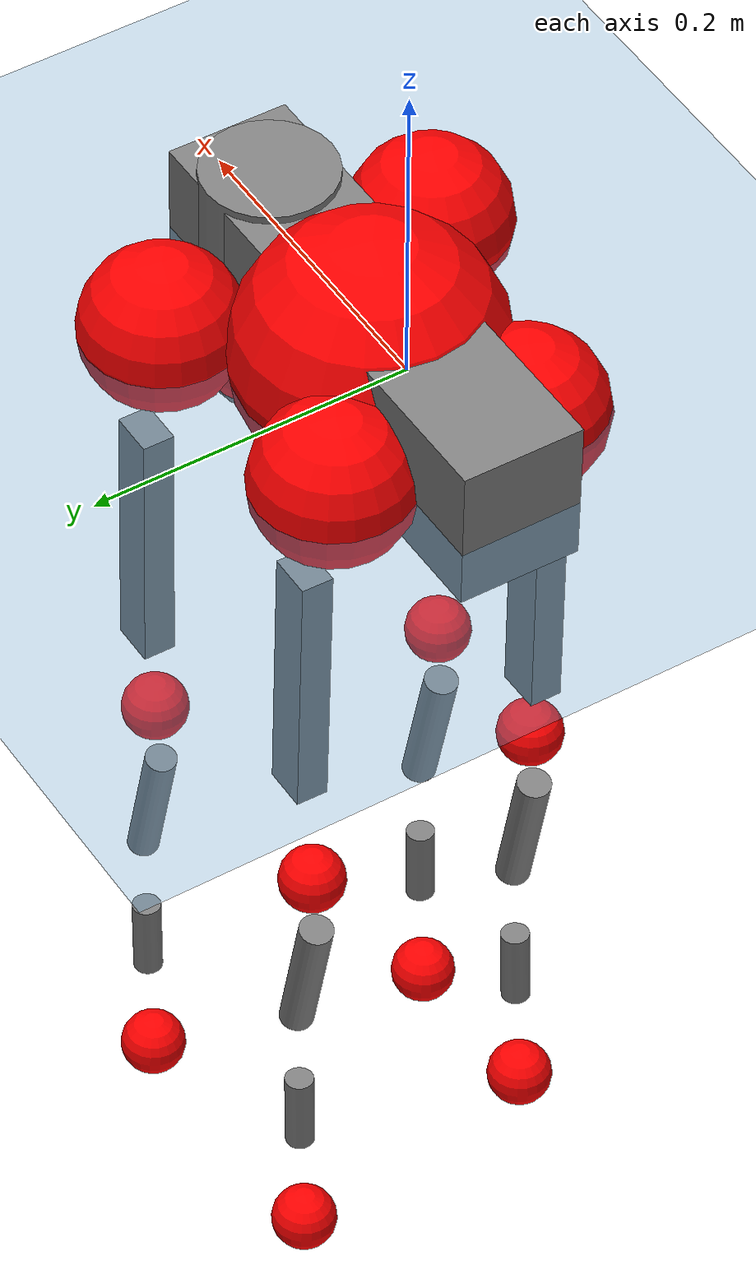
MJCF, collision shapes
<mujoco model="go2">
  <compiler angle="radian" assetdir="assets" balanceinertia="true" inertiafromgeom="false"/>

  <option timestep="0.005" density="1.2" viscosity="2e-05"/>

  <size nkey="1"/>

  <visual>
    <quality shadowsize="8192"/>
    <map shadowclip="0.5"/>
  </visual>

  <default>
    <default class="/">
      <geom contype="0" conaffinity="0" group="1" solref="-1000 -80"/>
      <site size="0.01 0.005 0.005" group="5"/>
      <general forcelimited="true" biastype="affine" gainprm="20" biasprm="0 -20 -0.5"/>
      <default class="go2">
        <joint armature="0.01" damping="0.01" frictionloss="0.2"/>
        <geom condim="1" margin="0.001"/>
        <default class="visual">
          <geom type="mesh" group="2"/>
        </default>
        <default class="collision">
          <geom group="3"/>
          <default class="foot">
            <geom size="0.022 0 0" condim="6" priority="1" friction="0.8 0.02 0.01" solimp="0.015 1 0.022"/>
          </default>
        </default>
        <default class="reward_collision_sphere">
          <geom group="5" rgba="1 0 0 1"/>
        </default>
      </default>
    </default>
  </default>

  <asset>
    <texture type="skybox" colorspace="auto" name="//unnamed_texture_0" builtin="gradient" rgb1="0.95 0.95 0.95" rgb2="0.95 0.95 0.95" width="100" height="600"/>
    <texture type="2d" colorspace="auto" name="texplane" builtin="checker" rgb1="0.345 0.575 0.748" rgb2="0.345 0.575 0.748" markrgb="1 1 1" width="512" height="512"/>
    <material name="MatPlane" class="/" texture="texplane" texuniform="true" texrepeat="2 2" specular="0.9"/>
    <material name="metal" class="/" rgba="0.9 0.95 0.95 1"/>
    <material name="black" class="/" rgba="0 0 0 1"/>
    <material name="white" class="/"/>
    <material name="gray" class="/" rgba="0.671705 0.692426 0.77427 1"/>
    <mesh name="base_0" class="/" file="base_0.obj"/>
    <mesh name="base_1" class="/" file="base_1.obj"/>
    <mesh name="base_2" class="/" file="base_2.obj"/>
    <mesh name="base_3" class="/" file="base_3.obj"/>
    <mesh name="base_4" class="/" file="base_4.obj"/>
    <mesh name="hip_0" class="/" file="hip_0.obj"/>
    <mesh name="hip_1" class="/" file="hip_1.obj"/>
    <mesh name="thigh_0" class="/" file="thigh_0.obj"/>
    <mesh name="thigh_1" class="/" file="thigh_1.obj"/>
    <mesh name="thigh_mirror_0" class="/" file="thigh_mirror_0.obj"/>
    <mesh name="thigh_mirror_1" class="/" file="thigh_mirror_1.obj"/>
    <mesh name="calf_0" class="/" file="calf_0.obj"/>
    <mesh name="calf_1" class="/" file="calf_1.obj"/>
    <mesh name="calf_mirror_0" class="/" file="calf_mirror_0.obj"/>
    <mesh name="calf_mirror_1" class="/" file="calf_mirror_1.obj"/>
    <mesh name="foot" class="/" file="foot.obj"/>
  </asset>

  <worldbody>
    <geom name="floor" class="/" size="100 100 0.125" type="plane" group="0" material="MatPlane"/>
    <light name="toplight_shadow" class="/" pos="0 0 5" dir="0.0990148 0.0990148 -0.990148" type="directional" ambient="0.04 0.04 0.04" diffuse="0.55 0.55 0.55" specular="0.12 0.12 0.12"/>
    <light name="toplight_fill" class="/" pos="0 0 5" dir="0.0990148 0.0990148 -0.990148" type="directional" castshadow="false" ambient="0.04 0.04 0.04" diffuse="0.3 0.3 0.3" specular="0.08 0.08 0.08"/>
    <body name="trunk" childclass="go2" pos="0.0168856 0.0126846 0.00876026" quat="0.999975 0.00684038 0.000427588 0.00194348">
      <inertial pos="0.0255344 0.00394772 -0.00446263" quat="0.0176252 0.70182 -0.0377504 0.711135" mass="3.45611" diaginertia="0.000915119 0.00869855 0.126716"/>
      <joint name="//unnamed_joint_0" type="free" armature="0" damping="0" frictionloss="0"/>
      <geom name="//unnamed_geom_1" class="visual" material="black" mesh="base_0"/>
      <geom name="//unnamed_geom_2" class="visual" material="black" mesh="base_1"/>
      <geom name="//unnamed_geom_3" class="visual" material="black" mesh="base_2"/>
      <geom name="//unnamed_geom_4" class="visual" material="white" mesh="base_3"/>
      <geom name="//unnamed_geom_5" class="visual" material="gray" mesh="base_4"/>
      <geom name="trunk_1" class="collision" size="0.152861 0.0379918 0.0463215" type="box"/>
      <geom name="trunk_2" class="collision" size="0.0406329 0.0365696" pos="0.107456 0 0.0144204" type="cylinder"/>
      <geom name="trunk_3" class="collision" size="0.0381949" pos="0.110472 0 -0.0865224"/>
      <geom name="//unnamed_geom_9" class="reward_collision_sphere" size="0.0812658"/>
      <geom name="//unnamed_geom_10" class="reward_collision_sphere" size="0.0487595" pos="0.105571 0 -0.0648918"/>
      <site name="imu" pos="-0.0235793 -0.041969 0.096805" size="0.00812658"/>
      <camera name="track" pos="0 -1.23779 0" quat="0.707107 0.707107 0 0" mode="trackcom"/>
      <camera name="ego_camera" pos="0.117636 0 0.0648918" quat="-0.5 -0.5 0.5 0.5"/>
      <body name="FL_hip" pos="0.0844458 0.0405843 -0.0088498" quat="0.999964 -0.00237026 -0.00801567 0.00116311">
        <inertial pos="0.0157864 0.011682 0.0104453" quat="0.505009 0.508203 0.498711 0.487836" mass="0.312778" diaginertia="5.82258e-06 5.27156e-05 0.00209853"/>
        <joint name="FL_hip_joint" pos="0 0 0" axis="0.999637 0.0217253 -0.0159023" stiffness="0.0404173" range="-0.974307 1.34873" armature="0.00265192" damping="0.0688599" frictionloss="0.0881146"/>
        <geom name="//unnamed_geom_11" class="visual" material="metal" mesh="hip_0"/>
        <geom name="//unnamed_geom_12" class="visual" material="gray" mesh="hip_1"/>
        <geom name="//unnamed_geom_13" class="collision" size="0.0373823 0.0162532" pos="0 0.0495117 0" quat="0.707107 0.707107 0 0" type="cylinder"/>
        <geom name="//unnamed_geom_14" class="reward_collision_sphere" size="0.0487595" pos="0 0.0433228 0"/>
        <body name="FL_thigh" pos="0.000278515 0.0538133 -0.00853068" quat="0.999999 0.000500254 -0.000195555 -0.00114626">
          <inertial pos="-0.0182464 -0.0180299 -0.0627589" quat="0.82576 0.0771152 -0.0358513 0.557573" mass="0.657143" diaginertia="4.67172e-05 0.000473391 0.00594659"/>
          <joint name="FL_thigh_joint" pos="0 0 0" axis="-0.047966 0.998809 0.0089329" range="-1.28469 3.21844" armature="0.00293812" damping="0.0928124" frictionloss="0.0804339"/>
          <geom name="//unnamed_geom_15" class="visual" material="metal" mesh="thigh_0"/>
          <geom name="//unnamed_geom_16" class="visual" material="gray" mesh="thigh_1"/>
          <geom name="//unnamed_geom_17" class="collision" size="0.0865481 0.00995506 0.0138152" pos="0 0 -0.153577" quat="0.707107 0 0.707107 0" type="box"/>
          <body name="FL_calf" pos="0.00186207 -0.00628457 -0.303408" quat="0.999982 0.00301262 -0.00241868 -0.00461903">
            <inertial pos="-0.00888509 -0.0108304 -0.190583" quat="0.674863 -0.00111317 0.0552713 0.735869" mass="0.117964" diaginertia="1.24984e-05 0.000116098 0.000382651"/>
            <joint name="FL_calf_joint" pos="0 0 0" axis="0.000764491 0.999481 -0.0322156" range="-2.6428 -0.543718" armature="0.0130194" damping="0" frictionloss="0.203459"/>
            <geom name="//unnamed_geom_18" class="visual" material="gray" mesh="calf_0"/>
            <geom name="//unnamed_geom_19" class="visual" material="black" mesh="calf_1"/>
            <geom name="FL_calf0" class="collision" size="0.0097519 0.0487595" pos="0.00301631 0 -0.0865224" quat="0.994493 0 -0.104807 0" type="cylinder"/>
            <geom name="//unnamed_geom_21" class="collision" size="0.00893924 0.0264114" pos="0.00754077 0 -0.213422" quat="0.999688 0 0.0249974 0" type="cylinder"/>
            <geom name="//unnamed_geom_22" class="visual" pos="0 0 -0.307154" quat="1 0 0 0" material="black" mesh="foot"/>
            <geom name="FL_foot" class="foot" size="0.0134068" pos="-0.000754077 0 -0.307154"/>
            <geom name="//unnamed_geom_24" class="reward_collision_sphere" size="0.0203165"/>
            <geom name="//unnamed_geom_25" class="reward_collision_sphere" size="0.0203165" pos="-0.000754077 0 -0.307154"/>
            <site name="FL_foot" class="foot" pos="-0.000754077 0 -0.307154" size="0.00812658"/>
          </body>
        </body>
      </body>
      <body name="FR_hip" pos="0.0752159 -0.0436027 -0.0013033" quat="0.999988 -0.0019362 -0.000323335 0.00444219">
        <inertial pos="-0.0159658 -0.00833036 -0.00143753" quat="0.492588 0.504299 0.512862 0.489911" mass="0.233948" diaginertia="6.05045e-06 4.91838e-05 0.00289312"/>
        <joint name="FR_hip_joint" pos="0 0 0" axis="0.999852 -0.0120717 0.0122448" stiffness="0.0405525" range="-1.26698 0.998993" armature="0.0154063" damping="0.0216521" frictionloss="0.0236786"/>
        <geom name="//unnamed_geom_26" class="visual" pos="0 -7.17088e-09 -3.07574e-07" quat="4.63268e-05 1 0 0" material="metal" mesh="hip_0"/>
        <geom name="//unnamed_geom_27" class="visual" pos="0 -1.16249e-08 7.60748e-07" quat="4.63268e-05 1 0 0" material="gray" mesh="hip_1"/>
        <geom name="//unnamed_geom_28" class="collision" size="0.0373823 0.0162532" pos="0 -0.0495117 0" quat="0.707107 0.707107 0 0" type="cylinder"/>
        <geom name="//unnamed_geom_29" class="reward_collision_sphere" size="0.0487595" pos="0 -0.0433228 0"/>
        <body name="FR_thigh" pos="-0.00340581 -0.0518385 -0.0154747" quat="0.999966 0.00578473 -0.00406247 0.00425882">
          <inertial pos="0.0115683 0.0314107 -0.0398289" quat="0.558019 -0.0258104 0.0611633 0.827168" mass="0.836216" diaginertia="4.8922e-05 0.000654469 0.00712409"/>
          <joint name="FR_thigh_joint" pos="0 0 0" axis="0.0125519 -0.999615 0.0247435" stiffness="0.020665" range="-3.34018 1.74128" armature="0.00846702" damping="0.0108367" frictionloss="0.0875937"/>
          <geom name="//unnamed_geom_30" class="visual" material="metal" mesh="thigh_mirror_0"/>
          <geom name="//unnamed_geom_31" class="visual" material="gray" mesh="thigh_mirror_1"/>
          <geom name="//unnamed_geom_32" class="collision" size="0.0865481 0.00995506 0.0138152" pos="0 0 -0.153577" quat="0.707107 0 0.707107 0" type="box"/>
          <body name="FR_calf" pos="-0.0122417 0.00150389 -0.309971" quat="1 -0.000135235 0.000224838 -4.23289e-05">
            <inertial pos="-0.0080787 0.00118434 -0.196691" quat="0.708007 0.0193066 -0.00440816 0.705928" mass="0.0967584" diaginertia="7.56917e-06 0.000126565 0.000260493"/>
            <joint name="FR_calf_joint" pos="0 0 0" axis="-0.030799 -0.997531 0.0631145" stiffness="0.0562738" range="0.818702 2.81359" armature="0.00668103" damping="0" frictionloss="0.106915"/>
            <geom name="//unnamed_geom_33" class="visual" material="gray" mesh="calf_mirror_0"/>
            <geom name="//unnamed_geom_34" class="visual" material="black" mesh="calf_mirror_1"/>
            <geom name="FR_calf0" class="collision" size="0.0105646 0.0487595" pos="0.00377038 0 -0.0865224" quat="0.995004 0 -0.0998334 0" type="cylinder"/>
            <geom name="//unnamed_geom_36" class="collision" size="0.00893924 0.0264114" pos="0.00754077 0 -0.213422" quat="0.999688 0 0.0249974 0" type="cylinder"/>
            <geom name="//unnamed_geom_37" class="visual" pos="0 0 -0.307154" quat="1 0 0 0" material="black" mesh="foot"/>
            <geom name="FR_foot" class="foot" size="0.0170793" pos="-0.000754077 0 -0.307154"/>
            <geom name="//unnamed_geom_39" class="reward_collision_sphere" size="0.0203165"/>
            <geom name="//unnamed_geom_40" class="reward_collision_sphere" size="0.0203165" pos="-0.000754077 0 -0.307154"/>
            <site name="FR_foot" class="foot" pos="-0.000754077 0 -0.307154" size="0.00812658"/>
          </body>
        </body>
      </body>
      <body name="RL_hip" pos="-0.0673053 0.0230929 -0.0111113" quat="0.999957 0.00314701 -0.00867715 0.00129457">
        <inertial pos="-0.0148887 0.00739603 -0.00442015" quat="0.504799 0.497785 0.497739 0.499645" mass="0.320567" diaginertia="6.46886e-06 4.33301e-05 0.00311623"/>
        <joint name="RL_hip_joint" pos="0 0 0" axis="-0.999497 0.0289221 0.0129892" range="-0.932065 0.949698" armature="0.0073896" damping="0.0027826" frictionloss="0.0921501"/>
        <geom name="//unnamed_geom_41" class="visual" pos="9.27785e-09 0 1.81867e-06" quat="4.63268e-05 0 1 0" material="metal" mesh="hip_0"/>
        <geom name="//unnamed_geom_42" class="visual" pos="1.50405e-08 0 1.6129e-06" quat="4.63268e-05 0 1 0" material="gray" mesh="hip_1"/>
        <geom name="//unnamed_geom_43" class="collision" size="0.0373823 0.0162532" pos="0 0.0495117 0" quat="0.707107 0.707107 0 0" type="cylinder"/>
        <geom name="//unnamed_geom_44" class="reward_collision_sphere" size="0.0487595" pos="0 0.0433228 0"/>
        <body name="RL_thigh" pos="0.0162738 0.0498605 -0.0131174" quat="0.999966 0.00149311 0.00665401 -0.00458033">
          <inertial pos="0.00117789 -0.00802005 -0.0413896" quat="0.800396 0.115536 0.0324114 0.58734" mass="0.728608" diaginertia="4.10155e-05 0.000619641 0.00491253"/>
          <joint name="RL_thigh_joint" pos="0 0 0" axis="-0.00242216 0.99999 0.00372796" range="-0.421941 4.57984" armature="0.0124965" damping="0.0932545" frictionloss="0.229372"/>
          <geom name="//unnamed_geom_45" class="visual" material="metal" mesh="thigh_0"/>
          <geom name="//unnamed_geom_46" class="visual" material="gray" mesh="thigh_1"/>
          <geom name="//unnamed_geom_47" class="collision" size="0.0865481 0.00995506 0.0138152" pos="0 0 -0.153577" quat="0.707107 0 0.707107 0" type="box"/>
          <body name="RL_calf" pos="-0.00780424 -0.00541103 -0.31715" quat="0.999999 -0.000997051 -0.000600451 -0.000227727">
            <inertial pos="0.00229581 0.000804476 -0.215003" quat="0.713694 0.00135034 -0.00507122 0.700438" mass="0.130468" diaginertia="1.13063e-05 0.000125049 0.000338254"/>
            <joint name="RL_calf_joint" pos="0 0 0" axis="0.00682164 0.999972 0.00310164" stiffness="0.0177381" range="-2.58479 -0.848444" armature="0.0126677" damping="0.0805944" frictionloss="0.184462"/>
            <geom name="//unnamed_geom_48" class="visual" material="gray" mesh="calf_0"/>
            <geom name="//unnamed_geom_49" class="visual" material="black" mesh="calf_1"/>
            <geom name="RL_calf0" class="collision" size="0.0105646 0.0487595" pos="0.00377038 0 -0.0865224" quat="0.995004 0 -0.0998334 0" type="cylinder"/>
            <geom name="//unnamed_geom_51" class="collision" size="0.00893924 0.0264114" pos="0.00754077 0 -0.213422" quat="0.999688 0 0.0249974 0" type="cylinder"/>
            <geom name="//unnamed_geom_52" class="visual" pos="0 0 -0.307154" quat="1 0 0 0" material="black" mesh="foot"/>
            <geom name="RL_foot" class="foot" size="0.00943013" pos="-0.000754077 0 -0.307154"/>
            <geom name="//unnamed_geom_54" class="reward_collision_sphere" size="0.0203165"/>
            <geom name="//unnamed_geom_55" class="reward_collision_sphere" size="0.0203165" pos="-0.000754077 0 -0.307154"/>
            <site name="RL_foot" class="foot" pos="-0.000754077 0 -0.307154" size="0.00812658"/>
          </body>
        </body>
      </body>
      <body name="RR_hip" pos="-0.0724666 -0.0123013 -0.0139593" quat="0.999979 -0.00216231 0.00244045 0.00556058">
        <inertial pos="0.00084351 -0.0151843 7.8459e-05" quat="0.516447 0.454626 0.552612 0.470338" mass="0.374427" diaginertia="5.97755e-06 4.75688e-05 0.00342768"/>
        <joint name="RR_hip_joint" pos="0 0 0" axis="-0.9996 0.0137153 -0.024722" range="-1.15806 1.01472" armature="0.000519482" damping="0" frictionloss="0.285711"/>
        <geom name="//unnamed_geom_56" class="visual" pos="-9.26948e-09 -7.17088e-09 2.12625e-06" quat="2.14617e-09 4.63268e-05 4.63268e-05 -1" material="metal" mesh="hip_0"/>
        <geom name="//unnamed_geom_57" class="visual" pos="-1.50612e-08 -1.16249e-08 8.52155e-07" quat="2.14617e-09 4.63268e-05 4.63268e-05 -1" material="gray" mesh="hip_1"/>
        <geom name="//unnamed_geom_58" class="collision" size="0.0373823 0.0162532" pos="0 -0.0495117 0" quat="0.707107 0.707107 0 0" type="cylinder"/>
        <geom name="//unnamed_geom_59" class="reward_collision_sphere" size="0.0487595" pos="0 -0.0433228 0"/>
        <body name="RR_thigh" pos="-0.00239342 -0.0533783 0.0143886" quat="0.999989 -0.00104926 -0.0043666 -0.00159175">
          <inertial pos="-0.00096032 0.0237656 -0.0504081" quat="0.552297 -0.0153796 0.0788409 0.829768" mass="0.768981" diaginertia="5.58571e-05 0.000599176 0.00726374"/>
          <joint name="RR_thigh_joint" pos="0 0 0" axis="0.0137504 -0.999191 -0.0377823" stiffness="0.0621319" range="-4.21993 0.293644" armature="0.00419244" damping="0.0356182" frictionloss="0.219727"/>
          <geom name="//unnamed_geom_60" class="visual" material="metal" mesh="thigh_mirror_0"/>
          <geom name="//unnamed_geom_61" class="visual" material="gray" mesh="thigh_mirror_1"/>
          <geom name="//unnamed_geom_62" class="collision" size="0.0865481 0.00995506 0.0138152" pos="0 0 -0.153577" quat="0.707107 0 0.707107 0" type="box"/>
          <body name="RR_calf" pos="0.0189921 -0.0132545 -0.304662" quat="0.999996 -0.0019482 0.000940719 -0.00190521">
            <inertial pos="-0.0158422 0.000495033 -0.21472" quat="0.733681 -0.0076916 0.00595737 0.679424" mass="0.122454" diaginertia="1.19442e-05 0.000187873 0.000341183"/>
            <joint name="RR_calf_joint" pos="0 0 0" axis="-0.0264255 -0.999583 -0.0116586" range="0.576402 2.35242" armature="0.0144079" damping="0" frictionloss="0.103848"/>
            <geom name="//unnamed_geom_63" class="visual" material="gray" mesh="calf_mirror_0"/>
            <geom name="//unnamed_geom_64" class="visual" material="black" mesh="calf_mirror_1"/>
            <geom name="RR_calf0" class="collision" size="0.0105646 0.0487595" pos="0.00377038 0 -0.0865224" quat="0.995004 0 -0.0998334 0" type="cylinder"/>
            <geom name="//unnamed_geom_66" class="collision" size="0.00893924 0.0264114" pos="0.00754077 0 -0.213422" quat="0.999688 0 0.0249974 0" type="cylinder"/>
            <geom name="//unnamed_geom_67" class="visual" pos="0 0 -0.307154" quat="1 0 0 0" material="black" mesh="foot"/>
            <geom name="RR_foot" class="foot" size="0.0202899" pos="-0.000754077 0 -0.307154"/>
            <geom name="//unnamed_geom_69" class="reward_collision_sphere" size="0.0203165"/>
            <geom name="//unnamed_geom_70" class="reward_collision_sphere" size="0.0203165" pos="-0.000754077 0 -0.307154"/>
            <site name="RR_foot" class="foot" pos="-0.000754077 0 -0.307154" size="0.00812658"/>
          </body>
        </body>
      </body>
    </body>
  </worldbody>

  <contact>
    <pair class="/" geom1="floor" geom2="FL_foot" name="//unnamed_contact_0"/>
    <pair class="/" geom1="floor" geom2="FR_foot" name="//unnamed_contact_1"/>
    <pair class="/" geom1="floor" geom2="RL_foot" name="//unnamed_contact_2"/>
    <pair class="/" geom1="floor" geom2="RR_foot" name="//unnamed_contact_3"/>
  </contact>

  <actuator>
    <general name="FL_hip" class="/" joint="FL_hip_joint" forcerange="-21.8603 21.8603" gainprm="16.5894" biasprm="0 -16.5894 -0.386017"/>
    <general name="FL_thigh" class="/" joint="FL_thigh_joint" forcerange="-26.7977 26.7977" gainprm="16.5894" biasprm="0 -16.5894 -0.386017"/>
    <general name="FL_calf" class="/" joint="FL_calf_joint" forcerange="-37.2084 37.2084" gainprm="16.5894" biasprm="0 -16.5894 -0.386017"/>
    <general name="FR_hip" class="/" joint="FR_hip_joint" forcerange="-6.31752 6.31752" gainprm="16.5894" biasprm="0 -16.5894 -0.386017"/>
    <general name="FR_thigh" class="/" joint="FR_thigh_joint" forcerange="-19.6044 19.6044" gainprm="16.5894" biasprm="0 -16.5894 -0.386017"/>
    <general name="FR_calf" class="/" joint="FR_calf_joint" forcerange="-55.3429 55.3429" gainprm="16.5894" biasprm="0 -16.5894 -0.386017"/>
    <general name="RL_hip" class="/" joint="RL_hip_joint" forcerange="-22.5829 22.5829" gainprm="16.5894" biasprm="0 -16.5894 -0.386017"/>
    <general name="RL_thigh" class="/" joint="RL_thigh_joint" forcerange="-22.6827 22.6827" gainprm="16.5894" biasprm="0 -16.5894 -0.386017"/>
    <general name="RL_calf" class="/" joint="RL_calf_joint" forcerange="-32.2644 32.2644" gainprm="16.5894" biasprm="0 -16.5894 -0.386017"/>
    <general name="RR_hip" class="/" joint="RR_hip_joint" forcerange="-15.8386 15.8386" gainprm="16.5894" biasprm="0 -16.5894 -0.386017"/>
    <general name="RR_thigh" class="/" joint="RR_thigh_joint" forcerange="-24.862 24.862" gainprm="16.5894" biasprm="0 -16.5894 -0.386017"/>
    <general name="RR_calf" class="/" joint="RR_calf_joint" forcerange="-14.9215 14.9215" gainprm="16.5894" biasprm="0 -16.5894 -0.386017"/>
  </actuator>

  <sensor>
    <gyro site="imu" name="imu_angular_velocity"/>
    <velocimeter site="imu" name="imu_linear_velocity"/>
    <framelinvel objtype="site" objname="FL_foot" name="FL_foot_global_linear_velocity"/>
    <framelinvel objtype="site" objname="FR_foot" name="FR_foot_global_linear_velocity"/>
    <framelinvel objtype="site" objname="RL_foot" name="RL_foot_global_linear_velocity"/>
    <framelinvel objtype="site" objname="RR_foot" name="RR_foot_global_linear_velocity"/>
  </sensor>

  <keyframe>
    <key name="home" qpos="0 0 0.325 1 0 0 0 0.1 0.8 -1.5 -0.1 -0.8 1.5 -0.1 0.8 -1.5 0.1 -0.8 1.5"/>
  </keyframe>
</mujoco>
